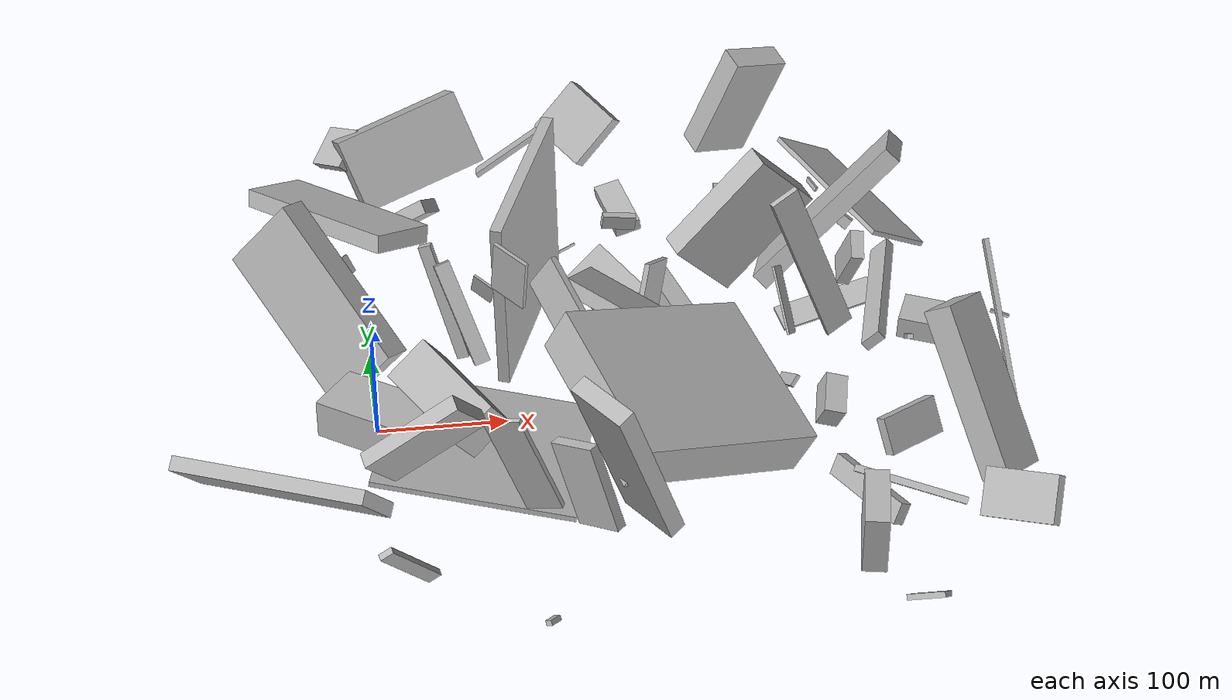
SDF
<sdf version="1.6">
 <world name="default">
  <scene>
   <sky><clouds><speed>12</speed></clouds></sky>
   <ambient>0.4 0.4 0.4 1</ambient>
   <background>0.7 0.7 0.7 1</background>
   <shadows>1</shadows>
  </scene>
  <gravity>0 0 -9.8066</gravity>
  <magnetic_field>6e-06 2.3e-05 -4.2e-05</magnetic_field>
  <physics default="0" name="default_physics" type="ode">
   <ode>
    <solver>
     <type>quick</type>
     <iters>10</iters>
     <sor>1.0</sor>
     <use_dynamic_moi_rescaling>0</use_dynamic_moi_rescaling>
    </solver>
    <constraints>
     <cfm>0</cfm>
     <erp>0.2</erp>
     <contact_max_correcting_vel>100</contact_max_correcting_vel>
     <contact_surface_layer>0.001</contact_surface_layer>
    </constraints>
   </ode>
   <max_step_size>0.004</max_step_size>
   <real_time_factor>1</real_time_factor>
   <real_time_update_rate>250</real_time_update_rate>
  </physics>
  <light name="sun" type="directional">
   <pose>0 0 10 0 0 0</pose>
   <diffuse>0.8 0.8 0.8 1</diffuse>
   <specular>0.2 0.2 0.2 1</specular>
   <attenuation>
    <range>1000</range>
    <constant>0.9</constant>
    <linear>0.01</linear>
    <quadratic>0.001</quadratic>
   </attenuation>
   <direction>-0.5 0.1 -0.9</direction>
  </light>
  <model name="building_1">
   <static>0</static>
   <pose>313.9453410012254 -268.9977063027803 96.21748874083043 1.5238719829614653 1.488030668418352 1.3196533916176056</pose>
   <link name="link">
    <gravity>0</gravity>
    <pose>0 0 8.5 0 0 0</pose>
    <collision name="collision"><geometry><box><size>46 51 17</size></box></geometry></collision>
    <visual name="visual">
     <cast_shadows>0</cast_shadows>
     <geometry><box><size>46 51 17</size></box></geometry>
     <material>
      <script>
       <uri>model://HANNAS_wall/materials/scripts</uri>
       <uri>model://HANNAS_wall/materials/textures</uri>
       <name>vrc/HANNAS_wall</name>
      </script>
     </material>
    </visual>
   </link>
  </model>
  <model name="building_2">
   <static>0</static>
   <pose>177.4876948521003 -236.7494293437287 90.72183732864316 0.1226332072255359 -0.4356676463855024 0.5844691508645559</pose>
   <link name="link">
    <gravity>0</gravity>
    <pose>0 0 75.0 0 0 0</pose>
    <collision name="collision"><geometry><box><size>13 45 150</size></box></geometry></collision>
    <visual name="visual">
     <cast_shadows>0</cast_shadows>
     <geometry><box><size>13 45 150</size></box></geometry>
     <material>
      <script>
       <uri>model://HANNAS_wall/materials/scripts</uri>
       <uri>model://HANNAS_wall/materials/textures</uri>
       <name>vrc/HANNAS_wall</name>
      </script>
     </material>
    </visual>
   </link>
  </model>
  <model name="building_3">
   <static>0</static>
   <pose>387.5589373312011 168.31916393983732 57.67473630677584 -2.0889537999536367 -0.18033100202829114 -2.068573787206368</pose>
   <link name="link">
    <gravity>0</gravity>
    <pose>0 0 7.0 0 0 0</pose>
    <collision name="collision"><geometry><box><size>4 10 14</size></box></geometry></collision>
    <visual name="visual">
     <cast_shadows>0</cast_shadows>
     <geometry><box><size>4 10 14</size></box></geometry>
     <material>
      <script>
       <uri>model://HANNAS_wall/materials/scripts</uri>
       <uri>model://HANNAS_wall/materials/textures</uri>
       <name>vrc/HANNAS_wall</name>
      </script>
     </material>
    </visual>
   </link>
  </model>
  <model name="building_4">
   <static>0</static>
   <pose>103.51408502841004 286.5441156653882 48.45527195891911 0.9823789147846397 0.2750767217126368 1.4967055695307914</pose>
   <link name="link">
    <gravity>0</gravity>
    <pose>0 0 38.0 0 0 0</pose>
    <collision name="collision"><geometry><box><size>18 4 76</size></box></geometry></collision>
    <visual name="visual">
     <cast_shadows>0</cast_shadows>
     <geometry><box><size>18 4 76</size></box></geometry>
     <material>
      <script>
       <uri>model://HANNAS_wall/materials/scripts</uri>
       <uri>model://HANNAS_wall/materials/textures</uri>
       <name>vrc/HANNAS_wall</name>
      </script>
     </material>
    </visual>
   </link>
  </model>
  <model name="building_5">
   <static>0</static>
   <pose>243.84958515293988 94.77749288504873 28.1037332174256 0.7566431510633653 -1.4429162538952705 -0.48570485429798727</pose>
   <link name="link">
    <gravity>0</gravity>
    <pose>0 0 8.5 0 0 0</pose>
    <collision name="collision"><geometry><box><size>44 57 17</size></box></geometry></collision>
    <visual name="visual">
     <cast_shadows>0</cast_shadows>
     <geometry><box><size>44 57 17</size></box></geometry>
     <material>
      <script>
       <uri>model://HANNAS_wall/materials/scripts</uri>
       <uri>model://HANNAS_wall/materials/textures</uri>
       <name>vrc/HANNAS_wall</name>
      </script>
     </material>
    </visual>
   </link>
  </model>
  <model name="building_6">
   <static>0</static>
   <pose>269.89431898652936 -136.04919540517298 116.75662132175026 1.238861825075991 0.32674496085176996 -1.228153084293741</pose>
   <link name="link">
    <gravity>0</gravity>
    <pose>0 0 75.0 0 0 0</pose>
    <collision name="collision"><geometry><box><size>125 35 150</size></box></geometry></collision>
    <visual name="visual">
     <cast_shadows>0</cast_shadows>
     <geometry><box><size>125 35 150</size></box></geometry>
     <material>
      <script>
       <uri>model://HANNAS_wall/materials/scripts</uri>
       <uri>model://HANNAS_wall/materials/textures</uri>
       <name>vrc/HANNAS_wall</name>
      </script>
     </material>
    </visual>
   </link>
  </model>
  <model name="building_7">
   <static>0</static>
   <pose>60.558232814980286 -99.64765464681909 20.69328130914629 -0.9786343456460395 -1.1704120970649128 -2.5093542304133583</pose>
   <link name="link">
    <gravity>0</gravity>
    <pose>0 0 20.5 0 0 0</pose>
    <collision name="collision"><geometry><box><size>9 18 41</size></box></geometry></collision>
    <visual name="visual">
     <cast_shadows>0</cast_shadows>
     <geometry><box><size>9 18 41</size></box></geometry>
     <material>
      <script>
       <uri>model://HANNAS_wall/materials/scripts</uri>
       <uri>model://HANNAS_wall/materials/textures</uri>
       <name>vrc/HANNAS_wall</name>
      </script>
     </material>
    </visual>
   </link>
  </model>
  <model name="building_8">
   <static>0</static>
   <pose>15.665272118344713 166.6223764558417 74.27619724693977 -0.892260738785374 -0.4207704118066632 -2.241198475385045</pose>
   <link name="link">
    <gravity>0</gravity>
    <pose>0 0 26.0 0 0 0</pose>
    <collision name="collision"><geometry><box><size>21 11 52</size></box></geometry></collision>
    <visual name="visual">
     <cast_shadows>0</cast_shadows>
     <geometry><box><size>21 11 52</size></box></geometry>
     <material>
      <script>
       <uri>model://HANNAS_wall/materials/scripts</uri>
       <uri>model://HANNAS_wall/materials/textures</uri>
       <name>vrc/HANNAS_wall</name>
      </script>
     </material>
    </visual>
   </link>
  </model>
  <model name="building_9">
   <static>0</static>
   <pose>70.09178493911865 -140.29332175157984 97.55406688745956 1.1620465661958963 0.6264475611394781 -2.7299093717124006</pose>
   <link name="link">
    <gravity>0</gravity>
    <pose>0 0 36.5 0 0 0</pose>
    <collision name="collision"><geometry><box><size>36 44 73</size></box></geometry></collision>
    <visual name="visual">
     <cast_shadows>0</cast_shadows>
     <geometry><box><size>36 44 73</size></box></geometry>
     <material>
      <script>
       <uri>model://HANNAS_wall/materials/scripts</uri>
       <uri>model://HANNAS_wall/materials/textures</uri>
       <name>vrc/HANNAS_wall</name>
      </script>
     </material>
    </visual>
   </link>
  </model>
  <model name="building_10">
   <static>0</static>
   <pose>-30.249780928000057 61.24873266269962 82.72182981732985 1.2790303653923545 0.6357722541143713 -0.9002277401287128</pose>
   <link name="link">
    <gravity>0</gravity>
    <pose>0 0 11.0 0 0 0</pose>
    <collision name="collision"><geometry><box><size>140 72 22</size></box></geometry></collision>
    <visual name="visual">
     <cast_shadows>0</cast_shadows>
     <geometry><box><size>140 72 22</size></box></geometry>
     <material>
      <script>
       <uri>model://HANNAS_wall/materials/scripts</uri>
       <uri>model://HANNAS_wall/materials/textures</uri>
       <name>vrc/HANNAS_wall</name>
      </script>
     </material>
    </visual>
   </link>
  </model>
  <model name="building_11">
   <static>0</static>
   <pose>240.5580054346104 -79.6192077441968 65.72703481579512 1.8853762903575888 -0.035236760468595356 2.558267290175848</pose>
   <link name="link">
    <gravity>0</gravity>
    <pose>0 0 7.0 0 0 0</pose>
    <collision name="collision"><geometry><box><size>10 92 14</size></box></geometry></collision>
    <visual name="visual">
     <cast_shadows>0</cast_shadows>
     <geometry><box><size>10 92 14</size></box></geometry>
     <material>
      <script>
       <uri>model://HANNAS_wall/materials/scripts</uri>
       <uri>model://HANNAS_wall/materials/textures</uri>
       <name>vrc/HANNAS_wall</name>
      </script>
     </material>
    </visual>
   </link>
  </model>
  <model name="building_12">
   <static>0</static>
   <pose>448.46321567640393 -108.02508552468285 83.94797972543891 1.3984615808480583 -0.5995368191369438 -0.7937306233578428</pose>
   <link name="link">
    <gravity>0</gravity>
    <pose>0 0 18.5 0 0 0</pose>
    <collision name="collision"><geometry><box><size>25 131 37</size></box></geometry></collision>
    <visual name="visual">
     <cast_shadows>0</cast_shadows>
     <geometry><box><size>25 131 37</size></box></geometry>
     <material>
      <script>
       <uri>model://HANNAS_wall/materials/scripts</uri>
       <uri>model://HANNAS_wall/materials/textures</uri>
       <name>vrc/HANNAS_wall</name>
      </script>
     </material>
    </visual>
   </link>
  </model>
  <model name="building_13">
   <static>0</static>
   <pose>446.2283694875439 -208.51652694725587 54.27488480436875 -0.19169366360234966 -0.8895754109833741 1.2239303414833909</pose>
   <link name="link">
    <gravity>0</gravity>
    <pose>0 0 11.0 0 0 0</pose>
    <collision name="collision"><geometry><box><size>35 52 22</size></box></geometry></collision>
    <visual name="visual">
     <cast_shadows>0</cast_shadows>
     <geometry><box><size>35 52 22</size></box></geometry>
     <material>
      <script>
       <uri>model://HANNAS_wall/materials/scripts</uri>
       <uri>model://HANNAS_wall/materials/textures</uri>
       <name>vrc/HANNAS_wall</name>
      </script>
     </material>
    </visual>
   </link>
  </model>
  <model name="building_14">
   <static>0</static>
   <pose>351.698676338665 257.68031494181616 16.974681376314614 -1.485065990444061 -0.12470046972970558 2.3272775653308027</pose>
   <link name="link">
    <gravity>0</gravity>
    <pose>0 0 2.0 0 0 0</pose>
    <collision name="collision"><geometry><box><size>44 12 4</size></box></geometry></collision>
    <visual name="visual">
     <cast_shadows>0</cast_shadows>
     <geometry><box><size>44 12 4</size></box></geometry>
     <material>
      <script>
       <uri>model://HANNAS_wall/materials/scripts</uri>
       <uri>model://HANNAS_wall/materials/textures</uri>
       <name>vrc/HANNAS_wall</name>
      </script>
     </material>
    </visual>
   </link>
  </model>
  <model name="building_15">
   <static>0</static>
   <pose>122.48825400395472 109.55692101617517 85.38929251341017 1.5733789912323644 -0.08940825614710914 1.1928393180991037</pose>
   <link name="link">
    <gravity>0</gravity>
    <pose>0 0 4.5 0 0 0</pose>
    <collision name="collision"><geometry><box><size>150 148 9</size></box></geometry></collision>
    <visual name="visual">
     <cast_shadows>0</cast_shadows>
     <geometry><box><size>150 148 9</size></box></geometry>
     <material>
      <script>
       <uri>model://HANNAS_wall/materials/scripts</uri>
       <uri>model://HANNAS_wall/materials/textures</uri>
       <name>vrc/HANNAS_wall</name>
      </script>
     </material>
    </visual>
   </link>
  </model>
  <model name="building_16">
   <static>0</static>
   <pose>368.83121169005216 16.386963827982004 115.48218223353683 1.2907109572590483 -0.9954098919315889 -1.387230780571347</pose>
   <link name="link">
    <gravity>0</gravity>
    <pose>0 0 5.0 0 0 0</pose>
    <collision name="collision"><geometry><box><size>47 23 10</size></box></geometry></collision>
    <visual name="visual">
     <cast_shadows>0</cast_shadows>
     <geometry><box><size>47 23 10</size></box></geometry>
     <material>
      <script>
       <uri>model://HANNAS_wall/materials/scripts</uri>
       <uri>model://HANNAS_wall/materials/textures</uri>
       <name>vrc/HANNAS_wall</name>
      </script>
     </material>
    </visual>
   </link>
  </model>
  <model name="building_17">
   <static>0</static>
   <pose>-19.666503347169463 255.13309529045512 82.9728696652789 -0.5098919921360777 0.7433436583592649 0.17049276540908445</pose>
   <link name="link">
    <gravity>0</gravity>
    <pose>0 0 17.0 0 0 0</pose>
    <collision name="collision"><geometry><box><size>9 44 34</size></box></geometry></collision>
    <visual name="visual">
     <cast_shadows>0</cast_shadows>
     <geometry><box><size>9 44 34</size></box></geometry>
     <material>
      <script>
       <uri>model://HANNAS_wall/materials/scripts</uri>
       <uri>model://HANNAS_wall/materials/textures</uri>
       <name>vrc/HANNAS_wall</name>
      </script>
     </material>
    </visual>
   </link>
  </model>
  <model name="building_18">
   <static>0</static>
   <pose>-4.07499164993248 -195.95081864537627 41.68233310135622 2.6682145471132688 0.6076691531052366 3.1228538819637035</pose>
   <link name="link">
    <gravity>0</gravity>
    <pose>0 0 33.0 0 0 0</pose>
    <collision name="collision"><geometry><box><size>11 5 66</size></box></geometry></collision>
    <visual name="visual">
     <cast_shadows>0</cast_shadows>
     <geometry><box><size>11 5 66</size></box></geometry>
     <material>
      <script>
       <uri>model://HANNAS_wall/materials/scripts</uri>
       <uri>model://HANNAS_wall/materials/textures</uri>
       <name>vrc/HANNAS_wall</name>
      </script>
     </material>
    </visual>
   </link>
  </model>
  <model name="building_19">
   <static>0</static>
   <pose>134.62385060857596 -43.21544145603321 135.90268407756673 1.960955505874808 1.0032179705671234 2.4505530847814643</pose>
   <link name="link">
    <gravity>0</gravity>
    <pose>0 0 2.5 0 0 0</pose>
    <collision name="collision"><geometry><box><size>35 57 5</size></box></geometry></collision>
    <visual name="visual">
     <cast_shadows>0</cast_shadows>
     <geometry><box><size>35 57 5</size></box></geometry>
     <material>
      <script>
       <uri>model://HANNAS_wall/materials/scripts</uri>
       <uri>model://HANNAS_wall/materials/textures</uri>
       <name>vrc/HANNAS_wall</name>
      </script>
     </material>
    </visual>
   </link>
  </model>
  <model name="building_20">
   <static>0</static>
   <pose>226.06152809554706 69.86021137374271 60.495654298818806 -0.09593298514723096 1.115070460122689 -2.131303344126375</pose>
   <link name="link">
    <gravity>0</gravity>
    <pose>0 0 25.5 0 0 0</pose>
    <collision name="collision"><geometry><box><size>57 4 51</size></box></geometry></collision>
    <visual name="visual">
     <cast_shadows>0</cast_shadows>
     <geometry><box><size>57 4 51</size></box></geometry>
     <material>
      <script>
       <uri>model://HANNAS_wall/materials/scripts</uri>
       <uri>model://HANNAS_wall/materials/textures</uri>
       <name>vrc/HANNAS_wall</name>
      </script>
     </material>
    </visual>
   </link>
  </model>
  <model name="building_21">
   <static>0</static>
   <pose>306.76900039820805 138.13711420740668 71.35824017136966 1.4704237052773488 0.7848086359037733 -2.958766578759277</pose>
   <link name="link">
    <gravity>0</gravity>
    <pose>0 0 11.5 0 0 0</pose>
    <collision name="collision"><geometry><box><size>101 66 23</size></box></geometry></collision>
    <visual name="visual">
     <cast_shadows>0</cast_shadows>
     <geometry><box><size>101 66 23</size></box></geometry>
     <material>
      <script>
       <uri>model://HANNAS_wall/materials/scripts</uri>
       <uri>model://HANNAS_wall/materials/textures</uri>
       <name>vrc/HANNAS_wall</name>
      </script>
     </material>
    </visual>
   </link>
  </model>
  <model name="building_22">
   <static>0</static>
   <pose>312.4849767136512 260.8603251282831 126.51707129646056 1.8739065969854025 0.22960103230671317 0.42772458829867505</pose>
   <link name="link">
    <gravity>0</gravity>
    <pose>0 0 10.5 0 0 0</pose>
    <collision name="collision"><geometry><box><size>49 95 21</size></box></geometry></collision>
    <visual name="visual">
     <cast_shadows>0</cast_shadows>
     <geometry><box><size>49 95 21</size></box></geometry>
     <material>
      <script>
       <uri>model://HANNAS_wall/materials/scripts</uri>
       <uri>model://HANNAS_wall/materials/textures</uri>
       <name>vrc/HANNAS_wall</name>
      </script>
     </material>
    </visual>
   </link>
  </model>
  <model name="building_23">
   <static>0</static>
   <pose>109.18658356959443 -250.74186464774954 17.915749711108113 -1.0862856855442666 -1.0602593964704365 1.972929140930615</pose>
   <link name="link">
    <gravity>0</gravity>
    <pose>0 0 5.5 0 0 0</pose>
    <collision name="collision"><geometry><box><size>4 5 11</size></box></geometry></collision>
    <visual name="visual">
     <cast_shadows>0</cast_shadows>
     <geometry><box><size>4 5 11</size></box></geometry>
     <material>
      <script>
       <uri>model://HANNAS_wall/materials/scripts</uri>
       <uri>model://HANNAS_wall/materials/textures</uri>
       <name>vrc/HANNAS_wall</name>
      </script>
     </material>
    </visual>
   </link>
  </model>
  <model name="building_24">
   <static>0</static>
   <pose>-0.7703588554961236 -43.67653495232147 30.960246331668078 -0.0003403762940672684 0.0011914608519955935 -2.2060450161130425</pose>
   <link name="link">
    <gravity>0</gravity>
    <pose>0 0 15.0 0 0 0</pose>
    <collision name="collision"><geometry><box><size>45 76 30</size></box></geometry></collision>
    <visual name="visual">
     <cast_shadows>0</cast_shadows>
     <geometry><box><size>45 76 30</size></box></geometry>
     <material>
      <script>
       <uri>model://HANNAS_wall/materials/scripts</uri>
       <uri>model://HANNAS_wall/materials/textures</uri>
       <name>vrc/HANNAS_wall</name>
      </script>
     </material>
    </visual>
   </link>
  </model>
  <model name="building_25">
   <static>0</static>
   <pose>149.22285618137923 -89.1807514415747 23.7085656291809 0.5314253640365768 1.4075809418857628 -2.833841876154293</pose>
   <link name="link">
    <gravity>0</gravity>
    <pose>0 0 75.0 0 0 0</pose>
    <collision name="collision"><geometry><box><size>4 150 150</size></box></geometry></collision>
    <visual name="visual">
     <cast_shadows>0</cast_shadows>
     <geometry><box><size>4 150 150</size></box></geometry>
     <material>
      <script>
       <uri>model://HANNAS_wall/materials/scripts</uri>
       <uri>model://HANNAS_wall/materials/textures</uri>
       <name>vrc/HANNAS_wall</name>
      </script>
     </material>
    </visual>
   </link>
  </model>
  <model name="building_26">
   <static>0</static>
   <pose>384.2457986241502 14.341633647903137 86.3888011705013 2.343173009635673 0.028461541418001078 1.3027372703985207</pose>
   <link name="link">
    <gravity>0</gravity>
    <pose>0 0 4.0 0 0 0</pose>
    <collision name="collision"><geometry><box><size>134 17 8</size></box></geometry></collision>
    <visual name="visual">
     <cast_shadows>0</cast_shadows>
     <geometry><box><size>134 17 8</size></box></geometry>
     <material>
      <script>
       <uri>model://HANNAS_wall/materials/scripts</uri>
       <uri>model://HANNAS_wall/materials/textures</uri>
       <name>vrc/HANNAS_wall</name>
      </script>
     </material>
    </visual>
   </link>
  </model>
  <model name="building_27">
   <static>0</static>
   <pose>418.0161343410992 -60.83581931195316 20.923787023388314 -1.5563475598753895 -1.0882292419174047 2.0686590266058493</pose>
   <link name="link">
    <gravity>0</gravity>
    <pose>0 0 25.0 0 0 0</pose>
    <collision name="collision"><geometry><box><size>29 9 50</size></box></geometry></collision>
    <visual name="visual">
     <cast_shadows>0</cast_shadows>
     <geometry><box><size>29 9 50</size></box></geometry>
     <material>
      <script>
       <uri>model://HANNAS_wall/materials/scripts</uri>
       <uri>model://HANNAS_wall/materials/textures</uri>
       <name>vrc/HANNAS_wall</name>
      </script>
     </material>
    </visual>
   </link>
  </model>
  <model name="building_28">
   <static>0</static>
   <pose>346.8275968436012 -32.047290501085605 88.74013339089373 0.4163121824830311 0.06763174672455577 -1.1851216421610133</pose>
   <link name="link">
    <gravity>0</gravity>
    <pose>0 0 75.0 0 0 0</pose>
    <collision name="collision"><geometry><box><size>4 22 150</size></box></geometry></collision>
    <visual name="visual">
     <cast_shadows>0</cast_shadows>
     <geometry><box><size>4 22 150</size></box></geometry>
     <material>
      <script>
       <uri>model://HANNAS_wall/materials/scripts</uri>
       <uri>model://HANNAS_wall/materials/textures</uri>
       <name>vrc/HANNAS_wall</name>
      </script>
     </material>
    </visual>
   </link>
  </model>
  <model name="building_29">
   <static>0</static>
   <pose>142.99751647334676 -227.5303302285023 77.55628727196988 0.30547964213352524 0.08590805529721529 -2.393753763836766</pose>
   <link name="link">
    <gravity>0</gravity>
    <pose>0 0 33.0 0 0 0</pose>
    <collision name="collision"><geometry><box><size>8 37 66</size></box></geometry></collision>
    <visual name="visual">
     <cast_shadows>0</cast_shadows>
     <geometry><box><size>8 37 66</size></box></geometry>
     <material>
      <script>
       <uri>model://HANNAS_wall/materials/scripts</uri>
       <uri>model://HANNAS_wall/materials/textures</uri>
       <name>vrc/HANNAS_wall</name>
      </script>
     </material>
    </visual>
   </link>
  </model>
  <model name="building_30">
   <static>0</static>
   <pose>415.0377771384724 17.05497828422014 35.70214717927487 -0.01521247574672891 0.5987929794294711 1.413020046658463</pose>
   <link name="link">
    <gravity>0</gravity>
    <pose>0 0 2.0 0 0 0</pose>
    <collision name="collision"><geometry><box><size>21 5 4</size></box></geometry></collision>
    <visual name="visual">
     <cast_shadows>0</cast_shadows>
     <geometry><box><size>21 5 4</size></box></geometry>
     <material>
      <script>
       <uri>model://HANNAS_wall/materials/scripts</uri>
       <uri>model://HANNAS_wall/materials/textures</uri>
       <name>vrc/HANNAS_wall</name>
      </script>
     </material>
    </visual>
   </link>
  </model>
  <model name="building_31">
   <static>0</static>
   <pose>54.553657209383935 235.3011802862916 72.68296469712632 0.4988898941179086 0.2661023963696825 -2.8923218164571467</pose>
   <link name="link">
    <gravity>0</gravity>
    <pose>0 0 30.5 0 0 0</pose>
    <collision name="collision"><geometry><box><size>103 45 61</size></box></geometry></collision>
    <visual name="visual">
     <cast_shadows>0</cast_shadows>
     <geometry><box><size>103 45 61</size></box></geometry>
     <material>
      <script>
       <uri>model://HANNAS_wall/materials/scripts</uri>
       <uri>model://HANNAS_wall/materials/textures</uri>
       <name>vrc/HANNAS_wall</name>
      </script>
     </material>
    </visual>
   </link>
  </model>
  <model name="building_32">
   <static>0</static>
   <pose>345.5894039904897 -286.9883063722921 40.12003502234452 1.0241176748260878 0.4415698422285857 0.650773276035334</pose>
   <link name="link">
    <gravity>0</gravity>
    <pose>0 0 15.5 0 0 0</pose>
    <collision name="collision"><geometry><box><size>8 4 31</size></box></geometry></collision>
    <visual name="visual">
     <cast_shadows>0</cast_shadows>
     <geometry><box><size>8 4 31</size></box></geometry>
     <material>
      <script>
       <uri>model://HANNAS_wall/materials/scripts</uri>
       <uri>model://HANNAS_wall/materials/textures</uri>
       <name>vrc/HANNAS_wall</name>
      </script>
     </material>
    </visual>
   </link>
  </model>
  <model name="building_33">
   <static>0</static>
   <pose>64.57662181419501 81.2488523899703 60.833445837804454 1.895991552594434 -0.13393118032585943 -1.8893406039591418</pose>
   <link name="link">
    <gravity>0</gravity>
    <pose>0 0 5.0 0 0 0</pose>
    <collision name="collision"><geometry><box><size>6 98 10</size></box></geometry></collision>
    <visual name="visual">
     <cast_shadows>0</cast_shadows>
     <geometry><box><size>6 98 10</size></box></geometry>
     <material>
      <script>
       <uri>model://HANNAS_wall/materials/scripts</uri>
       <uri>model://HANNAS_wall/materials/textures</uri>
       <name>vrc/HANNAS_wall</name>
      </script>
     </material>
    </visual>
   </link>
  </model>
  <model name="building_34">
   <static>0</static>
   <pose>-18.82754665237158 126.82046241939554 108.97917291354182 -0.1426554369945604 0.2539596261838371 0.6662005428077921</pose>
   <link name="link">
    <gravity>0</gravity>
    <pose>0 0 7.0 0 0 0</pose>
    <collision name="collision"><geometry><box><size>51 150 14</size></box></geometry></collision>
    <visual name="visual">
     <cast_shadows>0</cast_shadows>
     <geometry><box><size>51 150 14</size></box></geometry>
     <material>
      <script>
       <uri>model://HANNAS_wall/materials/scripts</uri>
       <uri>model://HANNAS_wall/materials/textures</uri>
       <name>vrc/HANNAS_wall</name>
      </script>
     </material>
    </visual>
   </link>
  </model>
  <model name="building_35">
   <static>0</static>
   <pose>-6.316594943020027 -157.7602051261554 55.59836450613522 1.6448523027218347 0.7696724261984359 -1.9910774288509174</pose>
   <link name="link">
    <gravity>0</gravity>
    <pose>0 0 75.0 0 0 0</pose>
    <collision name="collision"><geometry><box><size>11 57 150</size></box></geometry></collision>
    <visual name="visual">
     <cast_shadows>0</cast_shadows>
     <geometry><box><size>11 57 150</size></box></geometry>
     <material>
      <script>
       <uri>model://HANNAS_wall/materials/scripts</uri>
       <uri>model://HANNAS_wall/materials/textures</uri>
       <name>vrc/HANNAS_wall</name>
      </script>
     </material>
    </visual>
   </link>
  </model>
  <model name="building_36">
   <static>0</static>
   <pose>432.3347665960925 134.88919112215018 51.50372495441462 -1.449155229310254 -1.0678822193561222 0.24518896836921442</pose>
   <link name="link">
    <gravity>0</gravity>
    <pose>0 0 75.0 0 0 0</pose>
    <collision name="collision"><geometry><box><size>4 57 150</size></box></geometry></collision>
    <visual name="visual">
     <cast_shadows>0</cast_shadows>
     <geometry><box><size>4 57 150</size></box></geometry>
     <material>
      <script>
       <uri>model://HANNAS_wall/materials/scripts</uri>
       <uri>model://HANNAS_wall/materials/textures</uri>
       <name>vrc/HANNAS_wall</name>
      </script>
     </material>
    </visual>
   </link>
  </model>
  <model name="building_37">
   <static>0</static>
   <pose>220.99558530351914 265.10541073714455 12.565703899701044 -0.19042844601481715 -0.15954059539181562 1.7797287765385494</pose>
   <link name="link">
    <gravity>0</gravity>
    <pose>0 0 5.5 0 0 0</pose>
    <collision name="collision"><geometry><box><size>54 22 11</size></box></geometry></collision>
    <visual name="visual">
     <cast_shadows>0</cast_shadows>
     <geometry><box><size>54 22 11</size></box></geometry>
     <material>
      <script>
       <uri>model://HANNAS_wall/materials/scripts</uri>
       <uri>model://HANNAS_wall/materials/textures</uri>
       <name>vrc/HANNAS_wall</name>
      </script>
     </material>
    </visual>
   </link>
  </model>
  <model name="building_38">
   <static>0</static>
   <pose>469.6928091141952 19.728703301142858 121.83897650266857 2.5180253266977637 -0.04598474465480351 0.10931806535355956</pose>
   <link name="link">
    <gravity>0</gravity>
    <pose>0 0 65.0 0 0 0</pose>
    <collision name="collision"><geometry><box><size>4 5 130</size></box></geometry></collision>
    <visual name="visual">
     <cast_shadows>0</cast_shadows>
     <geometry><box><size>4 5 130</size></box></geometry>
     <material>
      <script>
       <uri>model://HANNAS_wall/materials/scripts</uri>
       <uri>model://HANNAS_wall/materials/textures</uri>
       <name>vrc/HANNAS_wall</name>
      </script>
     </material>
    </visual>
   </link>
  </model>
  <model name="building_39">
   <static>0</static>
   <pose>165.86221124911327 43.25601771590047 74.74175470873541 -0.9330276716756034 0.4004012588343436 -0.8442211474712866</pose>
   <link name="link">
    <gravity>0</gravity>
    <pose>0 0 20.0 0 0 0</pose>
    <collision name="collision"><geometry><box><size>50 4 40</size></box></geometry></collision>
    <visual name="visual">
     <cast_shadows>0</cast_shadows>
     <geometry><box><size>50 4 40</size></box></geometry>
     <material>
      <script>
       <uri>model://HANNAS_wall/materials/scripts</uri>
       <uri>model://HANNAS_wall/materials/textures</uri>
       <name>vrc/HANNAS_wall</name>
      </script>
     </material>
    </visual>
   </link>
  </model>
  <model name="building_40">
   <static>0</static>
   <pose>375.6984147556691 122.75638040889162 85.7631210929403 -0.3560714006748641 -0.8282508957783095 -0.013248935276952879</pose>
   <link name="link">
    <gravity>0</gravity>
    <pose>0 0 7.5 0 0 0</pose>
    <collision name="collision"><geometry><box><size>150 53 15</size></box></geometry></collision>
    <visual name="visual">
     <cast_shadows>0</cast_shadows>
     <geometry><box><size>150 53 15</size></box></geometry>
     <material>
      <script>
       <uri>model://HANNAS_wall/materials/scripts</uri>
       <uri>model://HANNAS_wall/materials/textures</uri>
       <name>vrc/HANNAS_wall</name>
      </script>
     </material>
    </visual>
   </link>
  </model>
  <model name="building_41">
   <static>0</static>
   <pose>-15.996858709782 212.14165483765498 10.994154688142732 -1.0007523773808282 0.08794929805709514 -2.3903323465315904</pose>
   <link name="link">
    <gravity>0</gravity>
    <pose>0 0 1.0 0 0 0</pose>
    <collision name="collision"><geometry><box><size>19 16 2</size></box></geometry></collision>
    <visual name="visual">
     <cast_shadows>0</cast_shadows>
     <geometry><box><size>19 16 2</size></box></geometry>
     <material>
      <script>
       <uri>model://HANNAS_wall/materials/scripts</uri>
       <uri>model://HANNAS_wall/materials/textures</uri>
       <name>vrc/HANNAS_wall</name>
      </script>
     </material>
    </visual>
   </link>
  </model>
  <model name="building_42">
   <static>0</static>
   <pose>26.012810895704717 -161.26640190415992 118.70287679329716 2.1622616703505 0.7847022373937137 0.6851813070608435</pose>
   <link name="link">
    <gravity>0</gravity>
    <pose>0 0 6.0 0 0 0</pose>
    <collision name="collision"><geometry><box><size>38 80 12</size></box></geometry></collision>
    <visual name="visual">
     <cast_shadows>0</cast_shadows>
     <geometry><box><size>38 80 12</size></box></geometry>
     <material>
      <script>
       <uri>model://HANNAS_wall/materials/scripts</uri>
       <uri>model://HANNAS_wall/materials/textures</uri>
       <name>vrc/HANNAS_wall</name>
      </script>
     </material>
    </visual>
   </link>
  </model>
  <model name="building_43">
   <static>0</static>
   <pose>336.3033874030069 -32.07966512172257 22.735219764946372 2.073377222651068 1.035988066685599 1.915929209725174</pose>
   <link name="link">
    <gravity>0</gravity>
    <pose>0 0 8.5 0 0 0</pose>
    <collision name="collision"><geometry><box><size>24 32 17</size></box></geometry></collision>
    <visual name="visual">
     <cast_shadows>0</cast_shadows>
     <geometry><box><size>24 32 17</size></box></geometry>
     <material>
      <script>
       <uri>model://HANNAS_wall/materials/scripts</uri>
       <uri>model://HANNAS_wall/materials/textures</uri>
       <name>vrc/HANNAS_wall</name>
      </script>
     </material>
    </visual>
   </link>
  </model>
  <model name="building_44">
   <static>0</static>
   <pose>368.0373551221737 -171.45192381264445 16.893210443969217 -1.7428595673265115 -1.1287517180139262 0.5689718891809664</pose>
   <link name="link">
    <gravity>0</gravity>
    <pose>0 0 39.5 0 0 0</pose>
    <collision name="collision"><geometry><box><size>17 9 79</size></box></geometry></collision>
    <visual name="visual">
     <cast_shadows>0</cast_shadows>
     <geometry><box><size>17 9 79</size></box></geometry>
     <material>
      <script>
       <uri>model://HANNAS_wall/materials/scripts</uri>
       <uri>model://HANNAS_wall/materials/textures</uri>
       <name>vrc/HANNAS_wall</name>
      </script>
     </material>
    </visual>
   </link>
  </model>
  <model name="building_45">
   <static>0</static>
   <pose>107.1370507376011 -202.54573384050914 77.41873540513625 -0.17225662785090223 0.32391053062958236 2.5806064103981194</pose>
   <link name="link">
    <gravity>0</gravity>
    <pose>0 0 40.0 0 0 0</pose>
    <collision name="collision"><geometry><box><size>29 4 80</size></box></geometry></collision>
    <visual name="visual">
     <cast_shadows>0</cast_shadows>
     <geometry><box><size>29 4 80</size></box></geometry>
     <material>
      <script>
       <uri>model://HANNAS_wall/materials/scripts</uri>
       <uri>model://HANNAS_wall/materials/textures</uri>
       <name>vrc/HANNAS_wall</name>
      </script>
     </material>
    </visual>
   </link>
  </model>
  <model name="building_46">
   <static>0</static>
   <pose>164.1663255623274 205.70862539134876 118.27234511462851 -0.6848424080631605 0.4071479649038654 -0.8228613843550492</pose>
   <link name="link">
    <gravity>0</gravity>
    <pose>0 0 23.5 0 0 0</pose>
    <collision name="collision"><geometry><box><size>48 17 47</size></box></geometry></collision>
    <visual name="visual">
     <cast_shadows>0</cast_shadows>
     <geometry><box><size>48 17 47</size></box></geometry>
     <material>
      <script>
       <uri>model://HANNAS_wall/materials/scripts</uri>
       <uri>model://HANNAS_wall/materials/textures</uri>
       <name>vrc/HANNAS_wall</name>
      </script>
     </material>
    </visual>
   </link>
  </model>
  <model name="building_47">
   <static>0</static>
   <pose>202.16907917272314 227.22492613775498 30.054918578036236 -1.698277324008797 0.06595506538848073 -1.554992010943538</pose>
   <link name="link">
    <gravity>0</gravity>
    <pose>0 0 14.0 0 0 0</pose>
    <collision name="collision"><geometry><box><size>7 12 28</size></box></geometry></collision>
    <visual name="visual">
     <cast_shadows>0</cast_shadows>
     <geometry><box><size>7 12 28</size></box></geometry>
     <material>
      <script>
       <uri>model://HANNAS_wall/materials/scripts</uri>
       <uri>model://HANNAS_wall/materials/textures</uri>
       <name>vrc/HANNAS_wall</name>
      </script>
     </material>
    </visual>
   </link>
  </model>
  <model name="building_48">
   <static>0</static>
   <pose>197.84966549923158 12.094761512058628 96.63387741424157 1.1315654595543103 0.30189655625217254 -0.5868077521744867</pose>
   <link name="link">
    <gravity>0</gravity>
    <pose>0 0 29.0 0 0 0</pose>
    <collision name="collision"><geometry><box><size>80 11 58</size></box></geometry></collision>
    <visual name="visual">
     <cast_shadows>0</cast_shadows>
     <geometry><box><size>80 11 58</size></box></geometry>
     <material>
      <script>
       <uri>model://HANNAS_wall/materials/scripts</uri>
       <uri>model://HANNAS_wall/materials/textures</uri>
       <name>vrc/HANNAS_wall</name>
      </script>
     </material>
    </visual>
   </link>
  </model>
  <model name="building_49">
   <static>0</static>
   <pose>151.6979528376255 197.35675010501183 15.280480296630234 0.5014188892626292 0.8953399583018156 -0.8653726785204012</pose>
   <link name="link">
    <gravity>0</gravity>
    <pose>0 0 2.0 0 0 0</pose>
    <collision name="collision"><geometry><box><size>2 53 4</size></box></geometry></collision>
    <visual name="visual">
     <cast_shadows>0</cast_shadows>
     <geometry><box><size>2 53 4</size></box></geometry>
     <material>
      <script>
       <uri>model://HANNAS_wall/materials/scripts</uri>
       <uri>model://HANNAS_wall/materials/textures</uri>
       <name>vrc/HANNAS_wall</name>
      </script>
     </material>
    </visual>
   </link>
  </model>
  <model name="building_50">
   <static>0</static>
   <pose>284.1533609667181 -107.60116342511526 89.58781261474194 -1.2825346558853228 -0.37126699907064115 2.042036154669144</pose>
   <link name="link">
    <gravity>0</gravity>
    <pose>0 0 24.5 0 0 0</pose>
    <collision name="collision"><geometry><box><size>22 2 49</size></box></geometry></collision>
    <visual name="visual">
     <cast_shadows>0</cast_shadows>
     <geometry><box><size>22 2 49</size></box></geometry>
     <material>
      <script>
       <uri>model://HANNAS_wall/materials/scripts</uri>
       <uri>model://HANNAS_wall/materials/textures</uri>
       <name>vrc/HANNAS_wall</name>
      </script>
     </material>
    </visual>
   </link>
  </model>
  <model name="building_51">
   <static>0</static>
   <pose>68.755431737965 29.327124655355174 84.70341983184223 0.9908406142051356 -0.28186722199233977 0.15952220392714225</pose>
   <link name="link">
    <gravity>0</gravity>
    <pose>0 0 15.0 0 0 0</pose>
    <collision name="collision"><geometry><box><size>12 80 30</size></box></geometry></collision>
    <visual name="visual">
     <cast_shadows>0</cast_shadows>
     <geometry><box><size>12 80 30</size></box></geometry>
     <material>
      <script>
       <uri>model://HANNAS_wall/materials/scripts</uri>
       <uri>model://HANNAS_wall/materials/textures</uri>
       <name>vrc/HANNAS_wall</name>
      </script>
     </material>
    </visual>
   </link>
  </model>
  <model name="building_52">
   <static>0</static>
   <pose>324.3931376678831 27.83352213364185 41.47925996235071 0.5030354684211047 -0.3737288768122245 -2.2987361099239276</pose>
   <link name="link">
    <gravity>0</gravity>
    <pose>0 0 27.0 0 0 0</pose>
    <collision name="collision"><geometry><box><size>11 2 54</size></box></geometry></collision>
    <visual name="visual">
     <cast_shadows>0</cast_shadows>
     <geometry><box><size>11 2 54</size></box></geometry>
     <material>
      <script>
       <uri>model://HANNAS_wall/materials/scripts</uri>
       <uri>model://HANNAS_wall/materials/textures</uri>
       <name>vrc/HANNAS_wall</name>
      </script>
     </material>
    </visual>
   </link>
  </model>
  <model name="building_53">
   <static>0</static>
   <pose>318.17467976460586 -21.881793360565357 32.80939888386351 -2.2580590192770327 -0.6536184871822888 0.6792594840382348</pose>
   <link name="link">
    <gravity>0</gravity>
    <pose>0 0 16.5 0 0 0</pose>
    <collision name="collision"><geometry><box><size>10 3 33</size></box></geometry></collision>
    <visual name="visual">
     <cast_shadows>0</cast_shadows>
     <geometry><box><size>10 3 33</size></box></geometry>
     <material>
      <script>
       <uri>model://HANNAS_wall/materials/scripts</uri>
       <uri>model://HANNAS_wall/materials/textures</uri>
       <name>vrc/HANNAS_wall</name>
      </script>
     </material>
    </visual>
   </link>
  </model>
  <model name="building_54">
   <static>0</static>
   <pose>487.70569081831735 22.136670641732366 48.93840147341265 -2.467634757161859 -1.2432787796522937 0.5254433939332288</pose>
   <link name="link">
    <gravity>0</gravity>
    <pose>0 0 2.0 0 0 0</pose>
    <collision name="collision"><geometry><box><size>2 15 4</size></box></geometry></collision>
    <visual name="visual">
     <cast_shadows>0</cast_shadows>
     <geometry><box><size>2 15 4</size></box></geometry>
     <material>
      <script>
       <uri>model://HANNAS_wall/materials/scripts</uri>
       <uri>model://HANNAS_wall/materials/textures</uri>
       <name>vrc/HANNAS_wall</name>
      </script>
     </material>
    </visual>
   </link>
  </model>
  <model name="building_55">
   <static>0</static>
   <pose>418.62608517023455 58.01146983513685 29.825826870006132 1.620596727314957 -0.04956815319204566 1.1690603366805035</pose>
   <link name="link">
    <gravity>0</gravity>
    <pose>0 0 19.5 0 0 0</pose>
    <collision name="collision"><geometry><box><size>33 18 39</size></box></geometry></collision>
    <visual name="visual">
     <cast_shadows>0</cast_shadows>
     <geometry><box><size>33 18 39</size></box></geometry>
     <material>
      <script>
       <uri>model://HANNAS_wall/materials/scripts</uri>
       <uri>model://HANNAS_wall/materials/textures</uri>
       <name>vrc/HANNAS_wall</name>
      </script>
     </material>
    </visual>
   </link>
  </model>
  <model name="building_56">
   <static>0</static>
   <pose>105.44570803666345 6.813142719553543 129.97364278240605 1.6724979621698737 0.18173043250176693 -0.8357834123909802</pose>
   <link name="link">
    <gravity>0</gravity>
    <pose>0 0 1.5 0 0 0</pose>
    <collision name="collision"><geometry><box><size>32 45 3</size></box></geometry></collision>
    <visual name="visual">
     <cast_shadows>0</cast_shadows>
     <geometry><box><size>32 45 3</size></box></geometry>
     <material>
      <script>
       <uri>model://HANNAS_wall/materials/scripts</uri>
       <uri>model://HANNAS_wall/materials/textures</uri>
       <name>vrc/HANNAS_wall</name>
      </script>
     </material>
    </visual>
   </link>
  </model>
  <model name="building_57">
   <static>0</static>
   <pose>95.23031082439763 161.33464570116394 14.24172448179027 0.9166427043737336 1.0865997530981835 1.7764526824601083</pose>
   <link name="link">
    <gravity>0</gravity>
    <pose>0 0 1.0 0 0 0</pose>
    <collision name="collision"><geometry><box><size>22 20 2</size></box></geometry></collision>
    <visual name="visual">
     <cast_shadows>0</cast_shadows>
     <geometry><box><size>22 20 2</size></box></geometry>
     <material>
      <script>
       <uri>model://HANNAS_wall/materials/scripts</uri>
       <uri>model://HANNAS_wall/materials/textures</uri>
       <name>vrc/HANNAS_wall</name>
      </script>
     </material>
    </visual>
   </link>
  </model>
  <model name="building_58">
   <static>0</static>
   <pose>329.31206850736226 198.96633242120146 16.692974226524626 2.95703937171048 -0.7970110534875708 1.9751216108799523</pose>
   <link name="link">
    <gravity>0</gravity>
    <pose>0 0 5.5 0 0 0</pose>
    <collision name="collision"><geometry><box><size>3 53 11</size></box></geometry></collision>
    <visual name="visual">
     <cast_shadows>0</cast_shadows>
     <geometry><box><size>3 53 11</size></box></geometry>
     <material>
      <script>
       <uri>model://HANNAS_wall/materials/scripts</uri>
       <uri>model://HANNAS_wall/materials/textures</uri>
       <name>vrc/HANNAS_wall</name>
      </script>
     </material>
    </visual>
   </link>
  </model>
  <model name="building_59">
   <static>0</static>
   <pose>360.82659168245607 72.47586917234517 37.153831578502775 -2.9687833960125305 0.2926182278064343 -1.3389358902618933</pose>
   <link name="link">
    <gravity>0</gravity>
    <pose>0 0 1.0 0 0 0</pose>
    <collision name="collision"><geometry><box><size>23 80 2</size></box></geometry></collision>
    <visual name="visual">
     <cast_shadows>0</cast_shadows>
     <geometry><box><size>23 80 2</size></box></geometry>
     <material>
      <script>
       <uri>model://HANNAS_wall/materials/scripts</uri>
       <uri>model://HANNAS_wall/materials/textures</uri>
       <name>vrc/HANNAS_wall</name>
      </script>
     </material>
    </visual>
   </link>
  </model>
  <model name="building_60">
   <static>0</static>
   <pose>302.1019332090315 259.3270435610916 25.2793745279527 -1.7038863127201855 -0.8316190085419738 -1.4955756661978556</pose>
   <link name="link">
    <gravity>0</gravity>
    <pose>0 0 5.0 0 0 0</pose>
    <collision name="collision"><geometry><box><size>2 24 10</size></box></geometry></collision>
    <visual name="visual">
     <cast_shadows>0</cast_shadows>
     <geometry><box><size>2 24 10</size></box></geometry>
     <material>
      <script>
       <uri>model://HANNAS_wall/materials/scripts</uri>
       <uri>model://HANNAS_wall/materials/textures</uri>
       <name>vrc/HANNAS_wall</name>
      </script>
     </material>
    </visual>
   </link>
  </model>
  <model name="building_61">
   <static>0</static>
   <pose>380.93505683340413 249.79895533136494 42.08098914037189 -1.7408068668362233 -0.23453718430906617 -2.7725325844351705</pose>
   <link name="link">
    <gravity>0</gravity>
    <pose>0 0 7.5 0 0 0</pose>
    <collision name="collision"><geometry><box><size>2 4 15</size></box></geometry></collision>
    <visual name="visual">
     <cast_shadows>0</cast_shadows>
     <geometry><box><size>2 4 15</size></box></geometry>
     <material>
      <script>
       <uri>model://HANNAS_wall/materials/scripts</uri>
       <uri>model://HANNAS_wall/materials/textures</uri>
       <name>vrc/HANNAS_wall</name>
      </script>
     </material>
    </visual>
   </link>
  </model>
  <model name="building_62">
   <static>0</static>
   <pose>45.31182361631118 -30.416953588670374 64.5471839204464 3.132010650762412 -0.8013623034181614 -2.9382073968636506</pose>
   <link name="link">
    <gravity>0</gravity>
    <pose>0 0 1.5 0 0 0</pose>
    <collision name="collision"><geometry><box><size>7 23 3</size></box></geometry></collision>
    <visual name="visual">
     <cast_shadows>0</cast_shadows>
     <geometry><box><size>7 23 3</size></box></geometry>
     <material>
      <script>
       <uri>model://HANNAS_wall/materials/scripts</uri>
       <uri>model://HANNAS_wall/materials/textures</uri>
       <name>vrc/HANNAS_wall</name>
      </script>
     </material>
    </visual>
   </link>
  </model>
  <model name="building_63">
   <static>0</static>
   <pose>355.1219055323786 -235.48313252613957 99.07944349450389 -2.3868265318968747 -0.15643202432495484 2.7369210510192925</pose>
   <link name="link">
    <gravity>0</gravity>
    <pose>0 0 2.5 0 0 0</pose>
    <collision name="collision"><geometry><box><size>80 4 5</size></box></geometry></collision>
    <visual name="visual">
     <cast_shadows>0</cast_shadows>
     <geometry><box><size>80 4 5</size></box></geometry>
     <material>
      <script>
       <uri>model://HANNAS_wall/materials/scripts</uri>
       <uri>model://HANNAS_wall/materials/textures</uri>
       <name>vrc/HANNAS_wall</name>
      </script>
     </material>
    </visual>
   </link>
  </model>
 </world>
</sdf>
